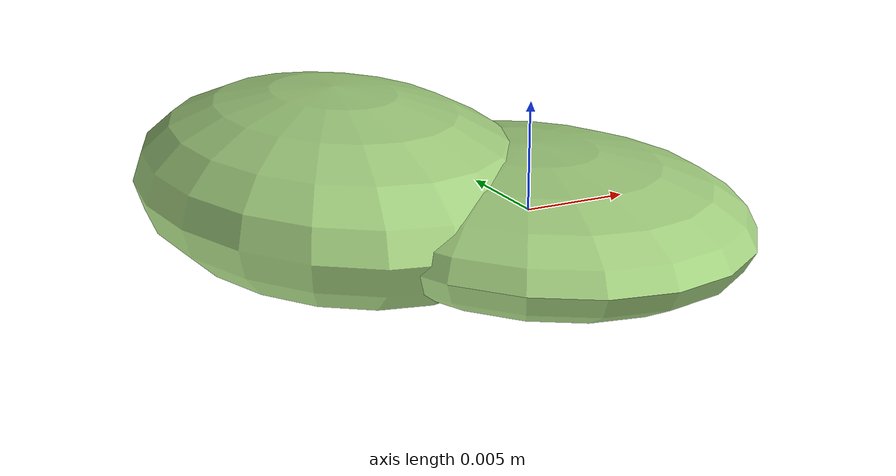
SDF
<?xml version="1.0" ?>
<!-- |    This document was autogenerated by xmacro from data/veggie_template/veggie_base.sdf.xacro  | -->
<!-- |    EDITING THIS FILE BY HAND IS NOT RECOMMENDED                                               | -->
<sdf version="1.8">
	<!-- Parameters -->
	<!-- Base -->
	<!-- Joint 0 -->
	<!-- Link 1 -->
	<!-- Joint 1 -->
	<!-- Link 2 -->
	<!-- Primitives -->
	<!-- All dimensions are half -->
	<!-- Object -->
	<model name="veggie">
		<!-- link0 -->
		<link name="link0">
			<inertial>
				<mass>0.0013643076265682547</mass>
				<inertia>
					<ixx>3.724005064594782e-08</ixx>
					<ixy>0</ixy>
					<ixz>0</ixz>
					<iyy>2.651918862229593e-08</iyy>
					<iyz>0</iyz>
					<izz>5.85566866484187e-08</izz>
				</inertia>
			</inertial>
			<visual name="link0_visual">
				<pose>0 0 0 0 0 0</pose>
				<geometry>
					<ellipsoid>
						<radii>0.009362470954963772 0.011267047026089239 0.0030876075315744577</radii>
					</ellipsoid>
				</geometry>
				<material>
					<ambient>0.659 0.839 0.514 1</ambient>
					<diffuse>0.659 0.839 0.514 1</diffuse>
					<specular>0 0 0 0</specular>
					<emissive>0 0 0 1</emissive>
				</material>
			</visual>
			<collision name="link0_collision">
				<pose>0 0 0 0 0 0 </pose>
				<geometry>
					<ellipsoid>
						<radii>0.009362470954963772 0.011267047026089239 0.0030876075315744577</radii>
					</ellipsoid>
				</geometry>
			</collision>
		</link>
		<!-- link1 -->
		<joint name="joint0" type="fixed">
			<pose relative_to="link0">-0.006574817628383283 0.006885719591794439 0.00045374115909641976 0.0 0.0 0.0</pose>
			<parent>link0</parent>
			<child>link1</child>
		</joint>
		<link name="link1">
			<pose relative_to="joint0">0 0 0 0 0 0</pose>
			<inertial>
				<mass>0.0021824964428187317</mass>
				<inertia>
					<ixx>8.010571610437864e-08</ixx>
					<ixy>0</ixy>
					<ixz>0</ixz>
					<iyy>4.478600938662001e-08</iyy>
					<iyz>0</iyz>
					<izz>1.0729571584918003e-07</izz>
				</inertia>
			</inertial>
			<visual name="link1_visual">
				<pose>0 0 0 0 0 0</pose>
				<geometry>
					<ellipsoid>
						<radii>0.009080026444472835 0.012781342672697182 0.004489524311815634</radii>
					</ellipsoid>
				</geometry>
				<material>
					<ambient>0.659 0.839 0.514 1</ambient>
					<diffuse>0.659 0.839 0.514 1</diffuse>
					<specular>0 0 0 0</specular>
					<emissive>0 0 0 1</emissive>
				</material>
			</visual>
			<collision name="link1_collision">
				<pose>0 0 0 0 0 0 </pose>
				<geometry>
					<ellipsoid>
						<radii>0.009080026444472835 0.012781342672697182 0.004489524311815634</radii>
					</ellipsoid>
				</geometry>
			</collision>
		</link>
		<!-- link2 -->
	</model>
</sdf>
